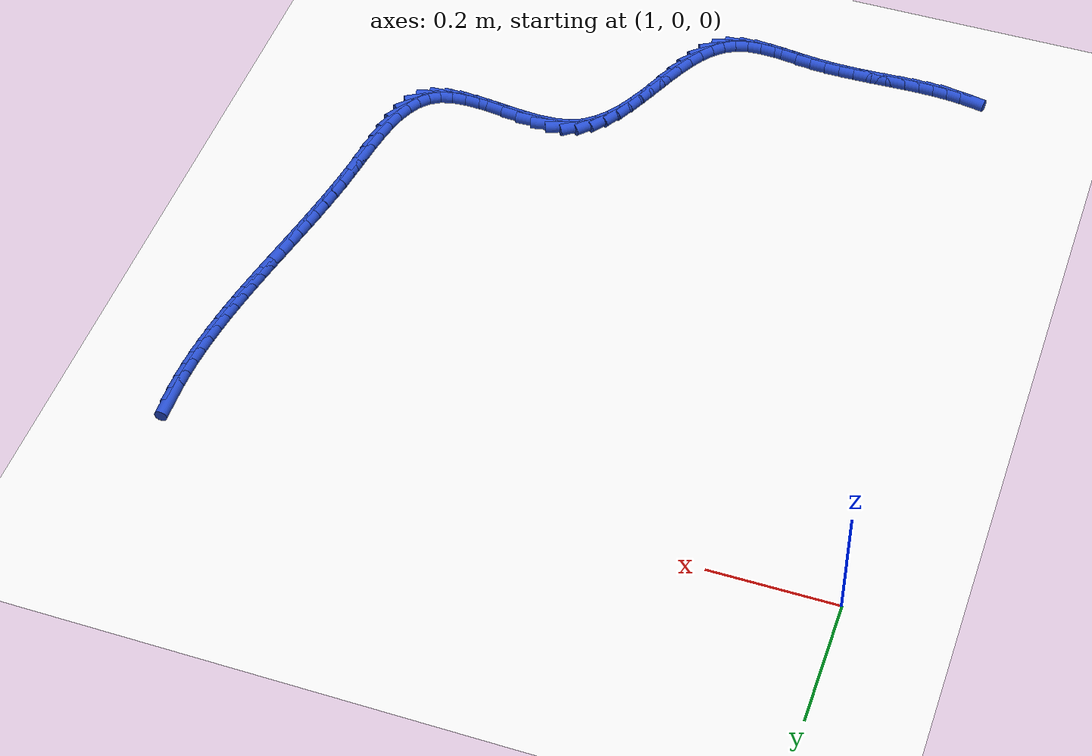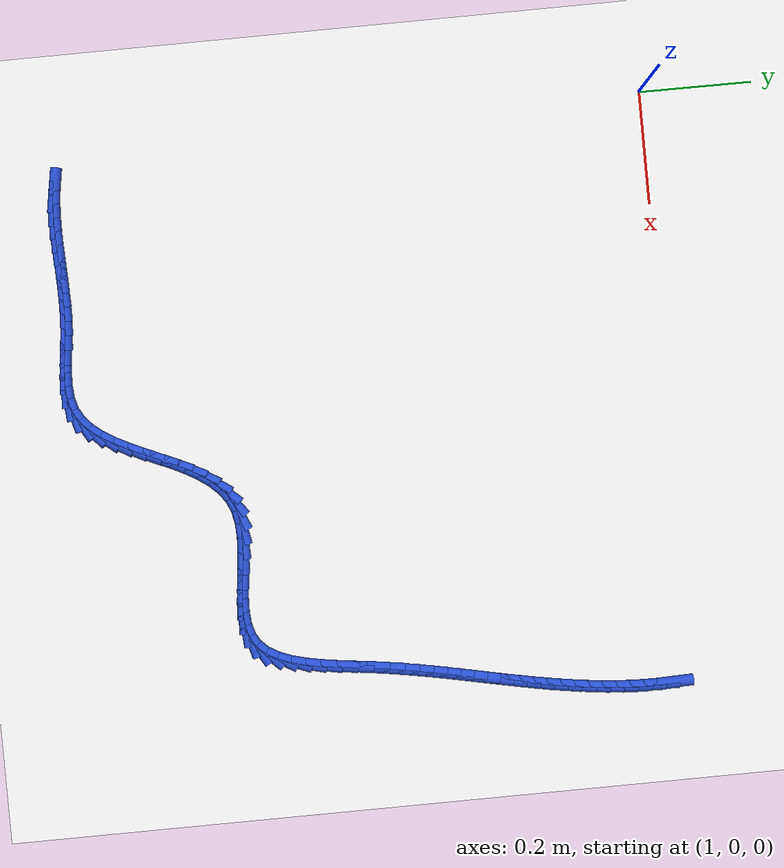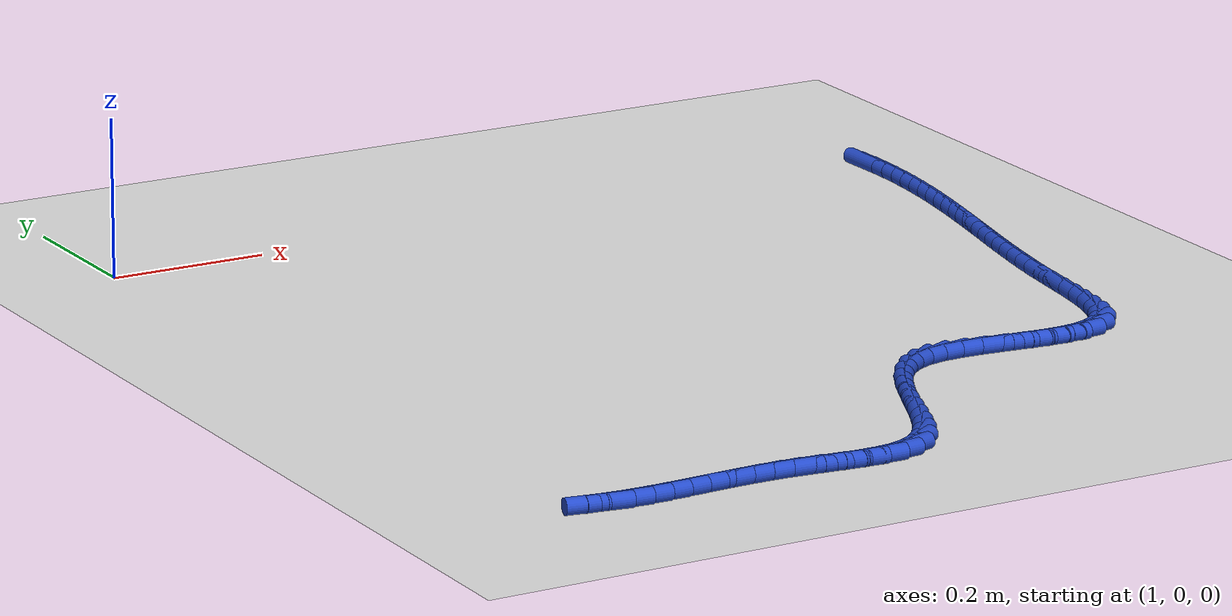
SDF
<sdf version="1.6">
 <world name="default">
  <model name="ground_plane">
   <static>1</static>
   <link name="link">
    <collision name="collision">
     <geometry><plane><normal>0 0 1</normal><size>100 100</size></plane></geometry>
     <surface><friction><ode><mu>100</mu><mu2>50</mu2></ode></friction></surface>
    </collision>
    <visual name="visual">
     <cast_shadows>0</cast_shadows>
     <geometry><plane><normal>0 0 1</normal><size>100 100</size></plane></geometry>
     <material>
      <script><uri>file://media/materials/scripts/gazebo.material</uri><name>Gazebo/WhiteGlow</name></script>
     </material>
    </visual>
   </link>
  </model>
  <model name="line">
   <link name="link_139">
    <pose>2.046635070123148 -0.045427946433530784 0.01 0 1.57 -1.5425975652600965</pose>
    <collision name="collision">
     <geometry><cylinder><radius>0.01</radius><length>0.08</length></cylinder></geometry>
    </collision>
    <visual name="visual">
     <material>
      <script><name>Gazebo/Blue</name><uri>file://media/materials/scripts/gazebo.material</uri></script>
     </material>
     <geometry><cylinder><radius>0.01</radius><length>0.08</length></cylinder></geometry>
    </visual>
   </link>
   <link name="link_140">
    <pose>2.0473241204326205 -0.06985695057708782 0.01 0 1.57 1.5630406397327503</pose>
    <collision name="collision">
     <geometry><cylinder><radius>0.01</radius><length>0.08</length></cylinder></geometry>
    </collision>
    <visual name="visual">
     <material>
      <script><name>Gazebo/Blue</name><uri>file://media/materials/scripts/gazebo.material</uri></script>
     </material>
     <geometry><cylinder><radius>0.01</radius><length>0.08</length></cylinder></geometry>
    </visual>
   </link>
   <link name="link_141">
    <pose>2.0471337014941406 -0.09440862717204566 0.01 0 1.57 1.5304638861998758</pose>
    <collision name="collision">
     <geometry><cylinder><radius>0.01</radius><length>0.08</length></cylinder></geometry>
    </collision>
    <visual name="visual">
     <material>
      <script><name>Gazebo/Blue</name><uri>file://media/materials/scripts/gazebo.material</uri></script>
     </material>
     <geometry><cylinder><radius>0.01</radius><length>0.08</length></cylinder></geometry>
    </visual>
   </link>
   <link name="link_142">
    <pose>2.0461395716390784 -0.1190436537085238 0.01 0 1.57 1.5011301407001503</pose>
    <collision name="collision">
     <geometry><cylinder><radius>0.01</radius><length>0.08</length></cylinder></geometry>
    </collision>
    <visual name="visual">
     <material>
      <script><name>Gazebo/Blue</name><uri>file://media/materials/scripts/gazebo.material</uri></script>
     </material>
     <geometry><cylinder><radius>0.01</radius><length>0.08</length></cylinder></geometry>
    </visual>
   </link>
   <link name="link_143">
    <pose>2.044417489198804 -0.14372270767664141 0.01 0 1.57 1.4749035277308504</pose>
    <collision name="collision">
     <geometry><cylinder><radius>0.01</radius><length>0.08</length></cylinder></geometry>
    </collision>
    <visual name="visual">
     <material>
      <script><name>Gazebo/Blue</name><uri>file://media/materials/scripts/gazebo.material</uri></script>
     </material>
     <geometry><cylinder><radius>0.01</radius><length>0.08</length></cylinder></geometry>
    </visual>
   </link>
   <link name="link_144">
    <pose>2.0420432125046872 -0.16840646656651762 0.01 0 1.57 1.4516547372662107</pose>
    <collision name="collision">
     <geometry><cylinder><radius>0.01</radius><length>0.08</length></cylinder></geometry>
    </collision>
    <visual name="visual">
     <material>
      <script><name>Gazebo/Blue</name><uri>file://media/materials/scripts/gazebo.material</uri></script>
     </material>
     <geometry><cylinder><radius>0.01</radius><length>0.08</length></cylinder></geometry>
    </visual>
   </link>
   <link name="link_145">
    <pose>2.0390924998880977 -0.19305560786827147 0.01 0 1.57 1.4312669162847609</pose>
    <collision name="collision">
     <geometry><cylinder><radius>0.01</radius><length>0.08</length></cylinder></geometry>
    </collision>
    <visual name="visual">
     <material>
      <script><name>Gazebo/Blue</name><uri>file://media/materials/scripts/gazebo.material</uri></script>
     </material>
     <geometry><cylinder><radius>0.01</radius><length>0.08</length></cylinder></geometry>
    </visual>
   </link>
   <link name="link_146">
    <pose>2.0356411096804057 -0.21763080907202298 0.01 0 1.57 1.4136401658649889</pose>
    <collision name="collision">
     <geometry><cylinder><radius>0.01</radius><length>0.08</length></cylinder></geometry>
    </collision>
    <visual name="visual">
     <material>
      <script><name>Gazebo/Blue</name><uri>file://media/materials/scripts/gazebo.material</uri></script>
     </material>
     <geometry><cylinder><radius>0.01</radius><length>0.08</length></cylinder></geometry>
    </visual>
   </link>
   <link name="link_147">
    <pose>2.031764800212982 -0.24209274766788969 0.01 0 1.57 1.3986950839480867</pose>
    <collision name="collision">
     <geometry><cylinder><radius>0.01</radius><length>0.08</length></cylinder></geometry>
    </collision>
    <visual name="visual">
     <material>
      <script><name>Gazebo/Blue</name><uri>file://media/materials/scripts/gazebo.material</uri></script>
     </material>
     <geometry><cylinder><radius>0.01</radius><length>0.08</length></cylinder></geometry>
    </visual>
   </link>
   <link name="link_148">
    <pose>2.0275393298171966 -0.2664021011459915 0.01 0 1.57 1.386375747973712</pose>
    <collision name="collision">
     <geometry><cylinder><radius>0.01</radius><length>0.08</length></cylinder></geometry>
    </collision>
    <visual name="visual">
     <material>
      <script><name>Gazebo/Blue</name><uri>file://media/materials/scripts/gazebo.material</uri></script>
     </material>
     <geometry><cylinder><radius>0.01</radius><length>0.08</length></cylinder></geometry>
    </visual>
   </link>
   <link name="link_149">
    <pose>2.0230404568244187 -0.2905195469964476 0.01 0 1.57 1.3766524854338698</pose>
    <collision name="collision">
     <geometry><cylinder><radius>0.01</radius><length>0.08</length></cylinder></geometry>
    </collision>
    <visual name="visual">
     <material>
      <script><name>Gazebo/Blue</name><uri>file://media/materials/scripts/gazebo.material</uri></script>
     </material>
     <geometry><cylinder><radius>0.01</radius><length>0.08</length></cylinder></geometry>
    </visual>
   </link>
   <link name="link_150">
    <pose>2.018343939566019 -0.3144057627093771 0.01 0 1.57 1.3695247439074105</pose>
    <collision name="collision">
     <geometry><cylinder><radius>0.01</radius><length>0.08</length></cylinder></geometry>
    </collision>
    <visual name="visual">
     <material>
      <script><name>Gazebo/Blue</name><uri>file://media/materials/scripts/gazebo.material</uri></script>
     </material>
     <geometry><cylinder><radius>0.01</radius><length>0.08</length></cylinder></geometry>
    </visual>
   </link>
   <link name="link_151">
    <pose>2.013525536373367 -0.3380214257748991 0.01 0 1.57 1.3650235253764162</pose>
    <collision name="collision">
     <geometry><cylinder><radius>0.01</radius><length>0.08</length></cylinder></geometry>
    </collision>
    <visual name="visual">
     <material>
      <script><name>Gazebo/Blue</name><uri>file://media/materials/scripts/gazebo.material</uri></script>
     </material>
     <geometry><cylinder><radius>0.01</radius><length>0.08</length></cylinder></geometry>
    </visual>
   </link>
   <link name="link_152">
    <pose>2.0086608954343412 -0.3613276452544167 0.01 0 1.57 1.3631048317002001</pose>
    <collision name="collision">
     <geometry><cylinder><radius>0.01</radius><length>0.08</length></cylinder></geometry>
    </collision>
    <visual name="visual">
     <material>
      <script><name>Gazebo/Blue</name><uri>file://media/materials/scripts/gazebo.material</uri></script>
     </material>
     <geometry><cylinder><radius>0.01</radius><length>0.08</length></cylinder></geometry>
    </visual>
   </link>
   <link name="link_153">
    <pose>2.0038102304636083 -0.3843460065506365 0.01 0 1.57 1.3636340993878362</pose>
    <collision name="collision">
     <geometry><cylinder><radius>0.01</radius><length>0.08</length></cylinder></geometry>
    </collision>
    <visual name="visual">
     <material>
      <script><name>Gazebo/Blue</name><uri>file://media/materials/scripts/gazebo.material</uri></script>
     </material>
     <geometry><cylinder><radius>0.01</radius><length>0.08</length></cylinder></geometry>
    </visual>
   </link>
   <link name="link_154">
    <pose>1.999002573136116 -0.40722027453106463 0.01 0 1.57 1.3666195626040056</pose>
    <collision name="collision">
     <geometry><cylinder><radius>0.01</radius><length>0.08</length></cylinder></geometry>
    </collision>
    <visual name="visual">
     <material>
      <script><name>Gazebo/Blue</name><uri>file://media/materials/scripts/gazebo.material</uri></script>
     </material>
     <geometry><cylinder><radius>0.01</radius><length>0.08</length></cylinder></geometry>
    </visual>
   </link>
   <link name="link_155">
    <pose>1.994263198253582 -0.4301089344844818 0.01 0 1.57 1.3720039686026573</pose>
    <collision name="collision">
     <geometry><cylinder><radius>0.01</radius><length>0.08</length></cylinder></geometry>
    </collision>
    <visual name="visual">
     <material>
      <script><name>Gazebo/Blue</name><uri>file://media/materials/scripts/gazebo.material</uri></script>
     </material>
     <geometry><cylinder><radius>0.01</radius><length>0.08</length></cylinder></geometry>
    </visual>
   </link>
   <link name="link_156">
    <pose>1.9896173806177226 -0.4531704716996668 0.01 0 1.57 1.3796395745281562</pose>
    <collision name="collision">
     <geometry><cylinder><radius>0.01</radius><length>0.08</length></cylinder></geometry>
    </collision>
    <visual name="visual">
     <material>
      <script><name>Gazebo/Blue</name><uri>file://media/materials/scripts/gazebo.material</uri></script>
     </material>
     <geometry><cylinder><radius>0.01</radius><length>0.08</length></cylinder></geometry>
    </visual>
   </link>
   <link name="link_157">
    <pose>1.9850903950302552 -0.47656337146540034 0.01 0 1.57 1.3892993280186192</pose>
    <collision name="collision">
     <geometry><cylinder><radius>0.01</radius><length>0.08</length></cylinder></geometry>
    </collision>
    <visual name="visual">
     <material>
      <script><name>Gazebo/Blue</name><uri>file://media/materials/scripts/gazebo.material</uri></script>
     </material>
     <geometry><cylinder><radius>0.01</radius><length>0.08</length></cylinder></geometry>
    </visual>
   </link>
   <link name="link_158">
    <pose>1.9807075162928958 -0.5004461190704624 0.01 0 1.57 1.40069457316303</pose>
    <collision name="collision">
     <geometry><cylinder><radius>0.01</radius><length>0.08</length></cylinder></geometry>
    </collision>
    <visual name="visual">
     <material>
      <script><name>Gazebo/Blue</name><uri>file://media/materials/scripts/gazebo.material</uri></script>
     </material>
     <geometry><cylinder><radius>0.01</radius><length>0.08</length></cylinder></geometry>
    </visual>
   </link>
   <link name="link_159">
    <pose>1.9764940192073623 -0.5249771998036334 0.01 0 1.57 1.413496798702801</pose>
    <collision name="collision">
     <geometry><cylinder><radius>0.01</radius><length>0.08</length></cylinder></geometry>
    </collision>
    <visual name="visual">
     <material>
      <script><name>Gazebo/Blue</name><uri>file://media/materials/scripts/gazebo.material</uri></script>
     </material>
     <geometry><cylinder><radius>0.01</radius><length>0.08</length></cylinder></geometry>
    </visual>
   </link>
   <link name="link_160">
    <pose>1.9724751785753711 -0.5503150989536935 0.01 0 1.57 1.4273605296001217</pose>
    <collision name="collision">
     <geometry><cylinder><radius>0.01</radius><length>0.08</length></cylinder></geometry>
    </collision>
    <visual name="visual">
     <material>
      <script><name>Gazebo/Blue</name><uri>file://media/materials/scripts/gazebo.material</uri></script>
     </material>
     <geometry><cylinder><radius>0.01</radius><length>0.08</length></cylinder></geometry>
    </visual>
   </link>
   <link name="link_161">
    <pose>1.9686762691986384 -0.5766183018094222 0.01 0 1.57 1.4402379480010943</pose>
    <collision name="collision">
     <geometry><cylinder><radius>0.01</radius><length>0.08</length></cylinder></geometry>
    </collision>
    <visual name="visual">
     <material>
      <script><name>Gazebo/Blue</name><uri>file://media/materials/scripts/gazebo.material</uri></script>
     </material>
     <geometry><cylinder><radius>0.01</radius><length>0.08</length></cylinder></geometry>
    </visual>
   </link>
   <link name="link_162">
    <pose>1.9650845458736204 -0.6039722914052993 0.01 0 1.57 1.4389969225136419</pose>
    <collision name="collision">
     <geometry><cylinder><radius>0.01</radius><length>0.08</length></cylinder></geometry>
    </collision>
    <visual name="visual">
     <material>
      <script><name>Gazebo/Blue</name><uri>file://media/materials/scripts/gazebo.material</uri></script>
     </material>
     <geometry><cylinder><radius>0.01</radius><length>0.08</length></cylinder></geometry>
    </visual>
   </link>
   <link name="link_163">
    <pose>1.9613846739715293 -0.6318815484845464 0.01 0 1.57 1.417875610198111</pose>
    <collision name="collision">
     <geometry><cylinder><radius>0.01</radius><length>0.08</length></cylinder></geometry>
    </collision>
    <visual name="visual">
     <material>
      <script><name>Gazebo/Blue</name><uri>file://media/materials/scripts/gazebo.material</uri></script>
     </material>
     <geometry><cylinder><radius>0.01</radius><length>0.08</length></cylinder></geometry>
    </visual>
   </link>
   <link name="link_164">
    <pose>1.9571167595891406 -0.6595729853670919 0.01 0 1.57 1.3749503539629424</pose>
    <collision name="collision">
     <geometry><cylinder><radius>0.01</radius><length>0.08</length></cylinder></geometry>
    </collision>
    <visual name="visual">
     <material>
      <script><name>Gazebo/Blue</name><uri>file://media/materials/scripts/gazebo.material</uri></script>
     </material>
     <geometry><cylinder><radius>0.01</radius><length>0.08</length></cylinder></geometry>
    </visual>
   </link>
   <link name="link_165">
    <pose>1.9518200119273719 -0.68627179224213 0.01 0 1.57 1.3050331099118926</pose>
    <collision name="collision">
     <geometry><cylinder><radius>0.01</radius><length>0.08</length></cylinder></geometry>
    </collision>
    <visual name="visual">
     <material>
      <script><name>Gazebo/Blue</name><uri>file://media/materials/scripts/gazebo.material</uri></script>
     </material>
     <geometry><cylinder><radius>0.01</radius><length>0.08</length></cylinder></geometry>
    </visual>
   </link>
   <link name="link_166">
    <pose>1.9450336401871413 -0.711203159298857 0.01 0 1.57 1.1987452331597959</pose>
    <collision name="collision">
     <geometry><cylinder><radius>0.01</radius><length>0.08</length></cylinder></geometry>
    </collision>
    <visual name="visual">
     <material>
      <script><name>Gazebo/Blue</name><uri>file://media/materials/scripts/gazebo.material</uri></script>
     </material>
     <geometry><cylinder><radius>0.01</radius><length>0.08</length></cylinder></geometry>
    </visual>
   </link>
   <link name="link_167">
    <pose>1.9362968535693659 -0.7335922767264692 0.01 0 1.57 1.0418372221930094</pose>
    <collision name="collision">
     <geometry><cylinder><radius>0.01</radius><length>0.08</length></cylinder></geometry>
    </collision>
    <visual name="visual">
     <material>
      <script><name>Gazebo/Blue</name><uri>file://media/materials/scripts/gazebo.material</uri></script>
     </material>
     <geometry><cylinder><radius>0.01</radius><length>0.08</length></cylinder></geometry>
    </visual>
   </link>
   <link name="link_168">
    <pose>1.925148861274964 -0.7526643347141624 0.01 0 1.57 0.8184962130252933</pose>
    <collision name="collision">
     <geometry><cylinder><radius>0.01</radius><length>0.08</length></cylinder></geometry>
    </collision>
    <visual name="visual">
     <material>
      <script><name>Gazebo/Blue</name><uri>file://media/materials/scripts/gazebo.material</uri></script>
     </material>
     <geometry><cylinder><radius>0.01</radius><length>0.08</length></cylinder></geometry>
    </visual>
   </link>
   <link name="link_169">
    <pose>1.911128872504854 -0.7676445234511322 0.01 0 1.57 0.5303505463946792</pose>
    <collision name="collision">
     <geometry><cylinder><radius>0.01</radius><length>0.08</length></cylinder></geometry>
    </collision>
    <visual name="visual">
     <material>
      <script><name>Gazebo/Blue</name><uri>file://media/materials/scripts/gazebo.material</uri></script>
     </material>
     <geometry><cylinder><radius>0.01</radius><length>0.08</length></cylinder></geometry>
    </visual>
   </link>
   <link name="link_170">
    <pose>1.8938040009451935 -0.7778036201986374 0.01 0 1.57 0.2621688353437139</pose>
    <collision name="collision">
     <geometry><cylinder><radius>0.01</radius><length>0.08</length></cylinder></geometry>
    </collision>
    <visual name="visual">
     <material>
      <script><name>Gazebo/Blue</name><uri>file://media/materials/scripts/gazebo.material</uri></script>
     </material>
     <geometry><cylinder><radius>0.01</radius><length>0.08</length></cylinder></geometry>
    </visual>
   </link>
   <link name="link_171">
    <pose>1.873289867822195 -0.7833084894433138 0.01 0 1.57 0.07937268497098263</pose>
    <collision name="collision">
     <geometry><cylinder><radius>0.01</radius><length>0.08</length></cylinder></geometry>
    </collision>
    <visual name="visual">
     <material>
      <script><name>Gazebo/Blue</name><uri>file://media/materials/scripts/gazebo.material</uri></script>
     </material>
     <geometry><cylinder><radius>0.01</radius><length>0.08</length></cylinder></geometry>
    </visual>
   </link>
   <link name="link_172">
    <pose>1.850203290416778 -0.7851447909466829 0.01 0 1.57 -0.032618070971718746</pose>
    <collision name="collision">
     <geometry><cylinder><radius>0.01</radius><length>0.08</length></cylinder></geometry>
    </collision>
    <visual name="visual">
     <material>
      <script><name>Gazebo/Blue</name><uri>file://media/materials/scripts/gazebo.material</uri></script>
     </material>
     <geometry><cylinder><radius>0.01</radius><length>0.08</length></cylinder></geometry>
    </visual>
   </link>
   <link name="link_173">
    <pose>1.825179504056071 -0.7843282737119248 0.01 0 1.57 -0.0929325295578294</pose>
    <collision name="collision">
     <geometry><cylinder><radius>0.01</radius><length>0.08</length></cylinder></geometry>
    </collision>
    <visual name="visual">
     <material>
      <script><name>Gazebo/Blue</name><uri>file://media/materials/scripts/gazebo.material</uri></script>
     </material>
     <geometry><cylinder><radius>0.01</radius><length>0.08</length></cylinder></geometry>
    </visual>
   </link>
   <link name="link_174">
    <pose>1.7988537440672054 -0.7818746867422205 0.01 0 1.57 -0.11342815123537553</pose>
    <collision name="collision">
     <geometry><cylinder><radius>0.01</radius><length>0.08</length></cylinder></geometry>
    </collision>
    <visual name="visual">
     <material>
      <script><name>Gazebo/Blue</name><uri>file://media/materials/scripts/gazebo.material</uri></script>
     </material>
     <geometry><cylinder><radius>0.01</radius><length>0.08</length></cylinder></geometry>
    </visual>
   </link>
   <link name="link_175">
    <pose>1.7718612457773093 -0.7787997790407503 0.01 0 1.57 -0.0988654628352959</pose>
    <collision name="collision">
     <geometry><cylinder><radius>0.01</radius><length>0.08</length></cylinder></geometry>
    </collision>
    <visual name="visual">
     <material>
      <script><name>Gazebo/Blue</name><uri>file://media/materials/scripts/gazebo.material</uri></script>
     </material>
     <geometry><cylinder><radius>0.01</radius><length>0.08</length></cylinder></geometry>
    </visual>
   </link>
   <link name="link_176">
    <pose>1.7448372445135119 -0.7761192996106946 0.01 0 1.57 -0.048043592759657104</pose>
    <collision name="collision">
     <geometry><cylinder><radius>0.01</radius><length>0.08</length></cylinder></geometry>
    </collision>
    <visual name="visual">
     <material>
      <script><name>Gazebo/Blue</name><uri>file://media/materials/scripts/gazebo.material</uri></script>
     </material>
     <geometry><cylinder><radius>0.01</radius><length>0.08</length></cylinder></geometry>
    </visual>
   </link>
   <link name="link_177">
    <pose>1.718416975602943 -0.7748489974552342 0.01 0 1.57 0.04585997573031397</pose>
    <collision name="collision">
     <geometry><cylinder><radius>0.01</radius><length>0.08</length></cylinder></geometry>
    </collision>
    <visual name="visual">
     <material>
      <script><name>Gazebo/Blue</name><uri>file://media/materials/scripts/gazebo.material</uri></script>
     </material>
     <geometry><cylinder><radius>0.01</radius><length>0.08</length></cylinder></geometry>
    </visual>
   </link>
   <link name="link_178">
    <pose>1.6932356743727321 -0.7760046215775492 0.01 0 1.57 0.19474887387491116</pose>
    <collision name="collision">
     <geometry><cylinder><radius>0.01</radius><length>0.08</length></cylinder></geometry>
    </collision>
    <visual name="visual">
     <material>
      <script><name>Gazebo/Blue</name><uri>file://media/materials/scripts/gazebo.material</uri></script>
     </material>
     <geometry><cylinder><radius>0.01</radius><length>0.08</length></cylinder></geometry>
    </visual>
   </link>
   <link name="link_179">
    <pose>1.669928576150008 -0.7806019209808204 0.01 0 1.57 0.4085212596354995</pose>
    <collision name="collision">
     <geometry><cylinder><radius>0.01</radius><length>0.08</length></cylinder></geometry>
    </collision>
    <visual name="visual">
     <material>
      <script><name>Gazebo/Blue</name><uri>file://media/materials/scripts/gazebo.material</uri></script>
     </material>
     <geometry><cylinder><radius>0.01</radius><length>0.08</length></cylinder></geometry>
    </visual>
   </link>
   <link name="link_180">
    <pose>1.6491064151794355 -0.7896152983311984 0.01 0 1.57 0.6385916049394667</pose>
    <collision name="collision">
     <geometry><cylinder><radius>0.01</radius><length>0.08</length></cylinder></geometry>
    </collision>
    <visual name="visual">
     <material>
      <script><name>Gazebo/Blue</name><uri>file://media/materials/scripts/gazebo.material</uri></script>
     </material>
     <geometry><cylinder><radius>0.01</radius><length>0.08</length></cylinder></geometry>
    </visual>
   </link>
   <link name="link_181">
    <pose>1.6308677725779517 -0.8031548819975444 0.01 0 1.57 0.8247665961188066</pose>
    <collision name="collision">
     <geometry><cylinder><radius>0.01</radius><length>0.08</length></cylinder></geometry>
    </collision>
    <visual name="visual">
     <material>
      <script><name>Gazebo/Blue</name><uri>file://media/materials/scripts/gazebo.material</uri></script>
     </material>
     <geometry><cylinder><radius>0.01</radius><length>0.08</length></cylinder></geometry>
    </visual>
   </link>
   <link name="link_182">
    <pose>1.614826088007101 -0.8205121090867795 0.01 0 1.57 0.9618290215626072</pose>
    <collision name="collision">
     <geometry><cylinder><radius>0.01</radius><length>0.08</length></cylinder></geometry>
    </collision>
    <visual name="visual">
     <material>
      <script><name>Gazebo/Blue</name><uri>file://media/materials/scripts/gazebo.material</uri></script>
     </material>
     <geometry><cylinder><radius>0.01</radius><length>0.08</length></cylinder></geometry>
    </visual>
   </link>
   <link name="link_183">
    <pose>1.600575707352803 -0.8409461953668972 0.01 0 1.57 1.0565234428320875</pose>
    <collision name="collision">
     <geometry><cylinder><radius>0.01</radius><length>0.08</length></cylinder></geometry>
    </collision>
    <visual name="visual">
     <material>
      <script><name>Gazebo/Blue</name><uri>file://media/materials/scripts/gazebo.material</uri></script>
     </material>
     <geometry><cylinder><radius>0.01</radius><length>0.08</length></cylinder></geometry>
    </visual>
   </link>
   <link name="link_184">
    <pose>1.5877109765009756 -0.8637163566058904 0.01 0 1.57 1.1169805441060858</pose>
    <collision name="collision">
     <geometry><cylinder><radius>0.01</radius><length>0.08</length></cylinder></geometry>
    </collision>
    <visual name="visual">
     <material>
      <script><name>Gazebo/Blue</name><uri>file://media/materials/scripts/gazebo.material</uri></script>
     </material>
     <geometry><cylinder><radius>0.01</radius><length>0.08</length></cylinder></geometry>
    </visual>
   </link>
   <link name="link_185">
    <pose>1.575826241337536 -0.8880818085717515 0.01 0 1.57 1.149215517168016</pose>
    <collision name="collision">
     <geometry><cylinder><radius>0.01</radius><length>0.08</length></cylinder></geometry>
    </collision>
    <visual name="visual">
     <material>
      <script><name>Gazebo/Blue</name><uri>file://media/materials/scripts/gazebo.material</uri></script>
     </material>
     <geometry><cylinder><radius>0.01</radius><length>0.08</length></cylinder></geometry>
    </visual>
   </link>
   <link name="link_186">
    <pose>1.5645158477484034 -0.9133017670324732 0.01 0 1.57 1.1564585679696013</pose>
    <collision name="collision">
     <geometry><cylinder><radius>0.01</radius><length>0.08</length></cylinder></geometry>
    </collision>
    <visual name="visual">
     <material>
      <script><name>Gazebo/Blue</name><uri>file://media/materials/scripts/gazebo.material</uri></script>
     </material>
     <geometry><cylinder><radius>0.01</radius><length>0.08</length></cylinder></geometry>
    </visual>
   </link>
   <link name="link_187">
    <pose>1.5533741416194964 -0.938635447756049 0.01 0 1.57 1.1392024161728462</pose>
    <collision name="collision">
     <geometry><cylinder><radius>0.01</radius><length>0.08</length></cylinder></geometry>
    </collision>
    <visual name="visual">
     <material>
      <script><name>Gazebo/Blue</name><uri>file://media/materials/scripts/gazebo.material</uri></script>
     </material>
     <geometry><cylinder><radius>0.01</radius><length>0.08</length></cylinder></geometry>
    </visual>
   </link>
   <link name="link_188">
    <pose>1.5419954688367332 -0.963342066510471 0.01 0 1.57 1.09515902874996</pose>
    <collision name="collision">
     <geometry><cylinder><radius>0.01</radius><length>0.08</length></cylinder></geometry>
    </collision>
    <visual name="visual">
     <material>
      <script><name>Gazebo/Blue</name><uri>file://media/materials/scripts/gazebo.material</uri></script>
     </material>
     <geometry><cylinder><radius>0.01</radius><length>0.08</length></cylinder></geometry>
    </visual>
   </link>
   <link name="link_189">
    <pose>1.5299741752860314 -0.9866808390637325 0.01 0 1.57 1.0189751297588638</pose>
    <collision name="collision">
     <geometry><cylinder><radius>0.01</radius><length>0.08</length></cylinder></geometry>
    </collision>
    <visual name="visual">
     <material>
      <script><name>Gazebo/Blue</name><uri>file://media/materials/scripts/gazebo.material</uri></script>
     </material>
     <geometry><cylinder><radius>0.01</radius><length>0.08</length></cylinder></geometry>
    </visual>
   </link>
   <link name="link_190">
    <pose>1.5169046068533094 -1.0079109811838263 0.01 0 1.57 0.902091557924365</pose>
    <collision name="collision">
     <geometry><cylinder><radius>0.01</radius><length>0.08</length></cylinder></geometry>
    </collision>
    <visual name="visual">
     <material>
      <script><name>Gazebo/Blue</name><uri>file://media/materials/scripts/gazebo.material</uri></script>
     </material>
     <geometry><cylinder><radius>0.01</radius><length>0.08</length></cylinder></geometry>
    </visual>
   </link>
   <link name="link_191">
    <pose>1.502381109424486 -1.0262917086387442 0.01 0 1.57 0.7343559915053396</pose>
    <collision name="collision">
     <geometry><cylinder><radius>0.01</radius><length>0.08</length></cylinder></geometry>
    </collision>
    <visual name="visual">
     <material>
      <script><name>Gazebo/Blue</name><uri>file://media/materials/scripts/gazebo.material</uri></script>
     </material>
     <geometry><cylinder><radius>0.01</radius><length>0.08</length></cylinder></geometry>
    </visual>
   </link>
   <link name="link_192">
    <pose>1.4859980288854802 -1.04108223719648 0.01 0 1.57 0.5111677032161208</pose>
    <collision name="collision">
     <geometry><cylinder><radius>0.01</radius><length>0.08</length></cylinder></geometry>
    </collision>
    <visual name="visual">
     <material>
      <script><name>Gazebo/Blue</name><uri>file://media/materials/scripts/gazebo.material</uri></script>
     </material>
     <geometry><cylinder><radius>0.01</radius><length>0.08</length></cylinder></geometry>
    </visual>
   </link>
   <link name="link_193">
    <pose>1.4673497755442775 -1.0515419077632655 0.01 0 1.57 0.2664549765840731</pose>
    <collision name="collision">
     <geometry><cylinder><radius>0.01</radius><length>0.08</length></cylinder></geometry>
    </collision>
    <visual name="visual">
     <material>
      <script><name>Gazebo/Blue</name><uri>file://media/materials/scripts/gazebo.material</uri></script>
     </material>
     <geometry><cylinder><radius>0.01</radius><length>0.08</length></cylinder></geometry>
    </visual>
   </link>
   <link name="link_194">
    <pose>1.4462252022128053 -1.0573077608954753 0.01 0 1.57 0.08258646773909134</pose>
    <collision name="collision">
     <geometry><cylinder><radius>0.01</radius><length>0.08</length></cylinder></geometry>
    </collision>
    <visual name="visual">
     <material>
      <script><name>Gazebo/Blue</name><uri>file://media/materials/scripts/gazebo.material</uri></script>
     </material>
     <geometry><cylinder><radius>0.01</radius><length>0.08</length></cylinder></geometry>
    </visual>
   </link>
   <link name="link_195">
    <pose>1.4230362746989715 -1.0592272183974687 0.01 0 1.57 -0.03387322596462513</pose>
    <collision name="collision">
     <geometry><cylinder><radius>0.01</radius><length>0.08</length></cylinder></geometry>
    </collision>
    <visual name="visual">
     <material>
      <script><name>Gazebo/Blue</name><uri>file://media/materials/scripts/gazebo.material</uri></script>
     </material>
     <geometry><cylinder><radius>0.01</radius><length>0.08</length></cylinder></geometry>
    </visual>
   </link>
   <link name="link_196">
    <pose>1.3983195214584974 -1.0583896618691564 0.01 0 1.57 -0.0971409341236674</pose>
    <collision name="collision">
     <geometry><cylinder><radius>0.01</radius><length>0.08</length></cylinder></geometry>
    </collision>
    <visual name="visual">
     <material>
      <script><name>Gazebo/Blue</name><uri>file://media/materials/scripts/gazebo.material</uri></script>
     </material>
     <geometry><cylinder><radius>0.01</radius><length>0.08</length></cylinder></geometry>
    </visual>
   </link>
   <link name="link_197">
    <pose>1.3726114709471056 -1.0558844729104502 0.01 0 1.57 -0.11731462302216358</pose>
    <collision name="collision">
     <geometry><cylinder><radius>0.01</radius><length>0.08</length></cylinder></geometry>
    </collision>
    <visual name="visual">
     <material>
      <script><name>Gazebo/Blue</name><uri>file://media/materials/scripts/gazebo.material</uri></script>
     </material>
     <geometry><cylinder><radius>0.01</radius><length>0.08</length></cylinder></geometry>
    </visual>
   </link>
   <link name="link_198">
    <pose>1.3464486516205165 -1.0528010331212603 0.01 0 1.57 -0.09841103497106805</pose>
    <collision name="collision">
     <geometry><cylinder><radius>0.01</radius><length>0.08</length></cylinder></geometry>
    </collision>
    <visual name="visual">
     <material>
      <script><name>Gazebo/Blue</name><uri>file://media/materials/scripts/gazebo.material</uri></script>
     </material>
     <geometry><cylinder><radius>0.01</radius><length>0.08</length></cylinder></geometry>
    </visual>
   </link>
   <link name="link_199">
    <pose>1.3203663904951173 -1.0502259323839194 0.01 0 1.57 -0.054324155381046</pose>
    <collision name="collision">
     <geometry><cylinder><radius>0.01</radius><length>0.08</length></cylinder></geometry>
    </collision>
    <visual name="visual">
     <material>
      <script><name>Gazebo/Blue</name><uri>file://media/materials/scripts/gazebo.material</uri></script>
     </material>
     <geometry><cylinder><radius>0.01</radius><length>0.08</length></cylinder></geometry>
    </visual>
   </link>
   <link name="link_200">
    <pose>1.2947217058475609 -1.048831434506464 0.01 0 1.57 -0.015511434421898495</pose>
    <collision name="collision">
     <geometry><cylinder><radius>0.01</radius><length>0.08</length></cylinder></geometry>
    </collision>
    <visual name="visual">
     <material>
      <script><name>Gazebo/Blue</name><uri>file://media/materials/scripts/gazebo.material</uri></script>
     </material>
     <geometry><cylinder><radius>0.01</radius><length>0.08</length></cylinder></geometry>
    </visual>
   </link>
   <link name="link_201">
    <pose>1.2695060127690558 -1.0484402715645034 0.01 0 1.57 0.013313696990488963</pose>
    <collision name="collision">
     <geometry><cylinder><radius>0.01</radius><length>0.08</length></cylinder></geometry>
    </collision>
    <visual name="visual">
     <material>
      <script><name>Gazebo/Blue</name><uri>file://media/materials/scripts/gazebo.material</uri></script>
     </material>
     <geometry><cylinder><radius>0.01</radius><length>0.08</length></cylinder></geometry>
    </visual>
   </link>
   <link name="link_202">
    <pose>1.2446658955919034 -1.0487710048993661 0.01 0 1.57 0.031443760857008625</pose>
    <collision name="collision">
     <geometry><cylinder><radius>0.01</radius><length>0.08</length></cylinder></geometry>
    </collision>
    <visual name="visual">
     <material>
      <script><name>Gazebo/Blue</name><uri>file://media/materials/scripts/gazebo.material</uri></script>
     </material>
     <geometry><cylinder><radius>0.01</radius><length>0.08</length></cylinder></geometry>
    </visual>
   </link>
   <link name="link_203">
    <pose>1.2201479386484042 -1.0495421958523816 0.01 0 1.57 0.03834161810200047</pose>
    <collision name="collision">
     <geometry><cylinder><radius>0.01</radius><length>0.08</length></cylinder></geometry>
    </collision>
    <visual name="visual">
     <material>
      <script><name>Gazebo/Blue</name><uri>file://media/materials/scripts/gazebo.material</uri></script>
     </material>
     <geometry><cylinder><radius>0.01</radius><length>0.08</length></cylinder></geometry>
    </visual>
   </link>
   <link name="link_204">
    <pose>1.1958987262708582 -1.0504724057648787 0.01 0 1.57 0.03359782628740814</pose>
    <collision name="collision">
     <geometry><cylinder><radius>0.01</radius><length>0.08</length></cylinder></geometry>
    </collision>
    <visual name="visual">
     <material>
      <script><name>Gazebo/Blue</name><uri>file://media/materials/scripts/gazebo.material</uri></script>
     </material>
     <geometry><cylinder><radius>0.01</radius><length>0.08</length></cylinder></geometry>
    </visual>
   </link>
   <link name="link_205">
    <pose>1.1718648427915666 -1.0512801959781857 0.01 0 1.57 0.016919144405273066</pose>
    <collision name="collision">
     <geometry><cylinder><radius>0.01</radius><length>0.08</length></cylinder></geometry>
    </collision>
    <visual name="visual">
     <material>
      <script><name>Gazebo/Blue</name><uri>file://media/materials/scripts/gazebo.material</uri></script>
     </material>
     <geometry><cylinder><radius>0.01</radius><length>0.08</length></cylinder></geometry>
    </visual>
   </link>
   <link name="link_206">
    <pose>1.147992872542829 -1.051684127833632 0.01 0 1.57 -0.011839684275192995</pose>
    <collision name="collision">
     <geometry><cylinder><radius>0.01</radius><length>0.08</length></cylinder></geometry>
    </collision>
    <visual name="visual">
     <material>
      <script><name>Gazebo/Blue</name><uri>file://media/materials/scripts/gazebo.material</uri></script>
     </material>
     <geometry><cylinder><radius>0.01</radius><length>0.08</length></cylinder></geometry>
    </visual>
   </link>
   <link name="link_207">
    <pose>1.1242293998569461 -1.051402762672546 0.01 0 1.57 -0.05259529319541257</pose>
    <collision name="collision">
     <geometry><cylinder><radius>0.01</radius><length>0.08</length></cylinder></geometry>
    </collision>
    <visual name="visual">
     <material>
      <script><name>Gazebo/Blue</name><uri>file://media/materials/scripts/gazebo.material</uri></script>
     </material>
     <geometry><cylinder><radius>0.01</radius><length>0.08</length></cylinder></geometry>
    </visual>
   </link>
   <link name="link_208">
    <pose>1.100521009066218 -1.0501546618362572 0.01 0 1.57 -0.10491158607898776</pose>
    <collision name="collision">
     <geometry><cylinder><radius>0.01</radius><length>0.08</length></cylinder></geometry>
    </collision>
    <visual name="visual">
     <material>
      <script><name>Gazebo/Blue</name><uri>file://media/materials/scripts/gazebo.material</uri></script>
     </material>
     <geometry><cylinder><radius>0.01</radius><length>0.08</length></cylinder></geometry>
    </visual>
   </link>
   <link name="link_209">
    <pose>1.0768142845029463 -1.0476583866660938 0.01 0 1.57 -0.1657011853251695</pose>
    <collision name="collision">
     <geometry><cylinder><radius>0.01</radius><length>0.08</length></cylinder></geometry>
    </collision>
    <visual name="visual">
     <material>
      <script><name>Gazebo/Blue</name><uri>file://media/materials/scripts/gazebo.material</uri></script>
     </material>
     <geometry><cylinder><radius>0.01</radius><length>0.08</length></cylinder></geometry>
    </visual>
   </link>
  </model>
 </world>
</sdf>
